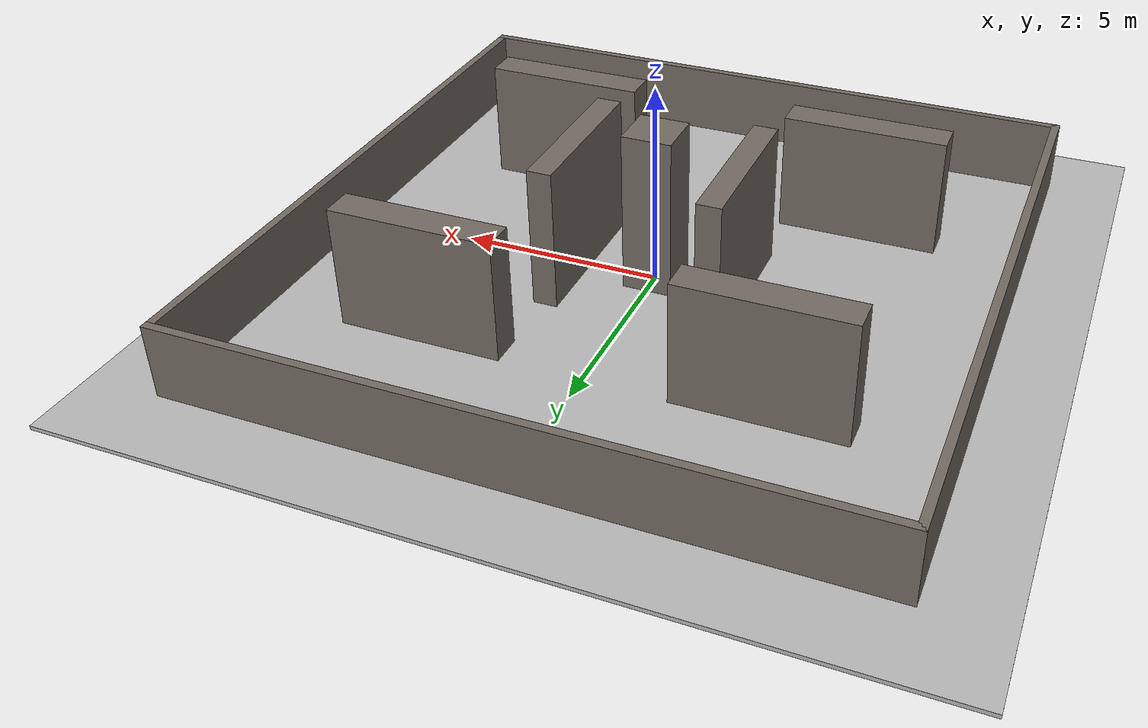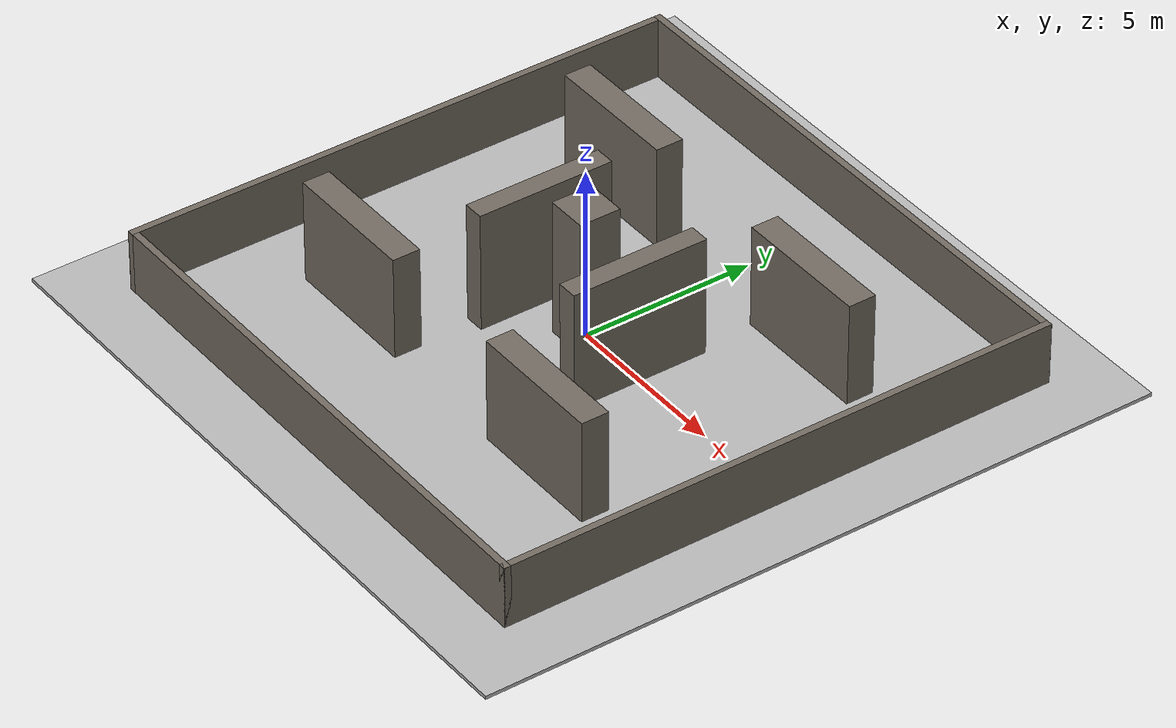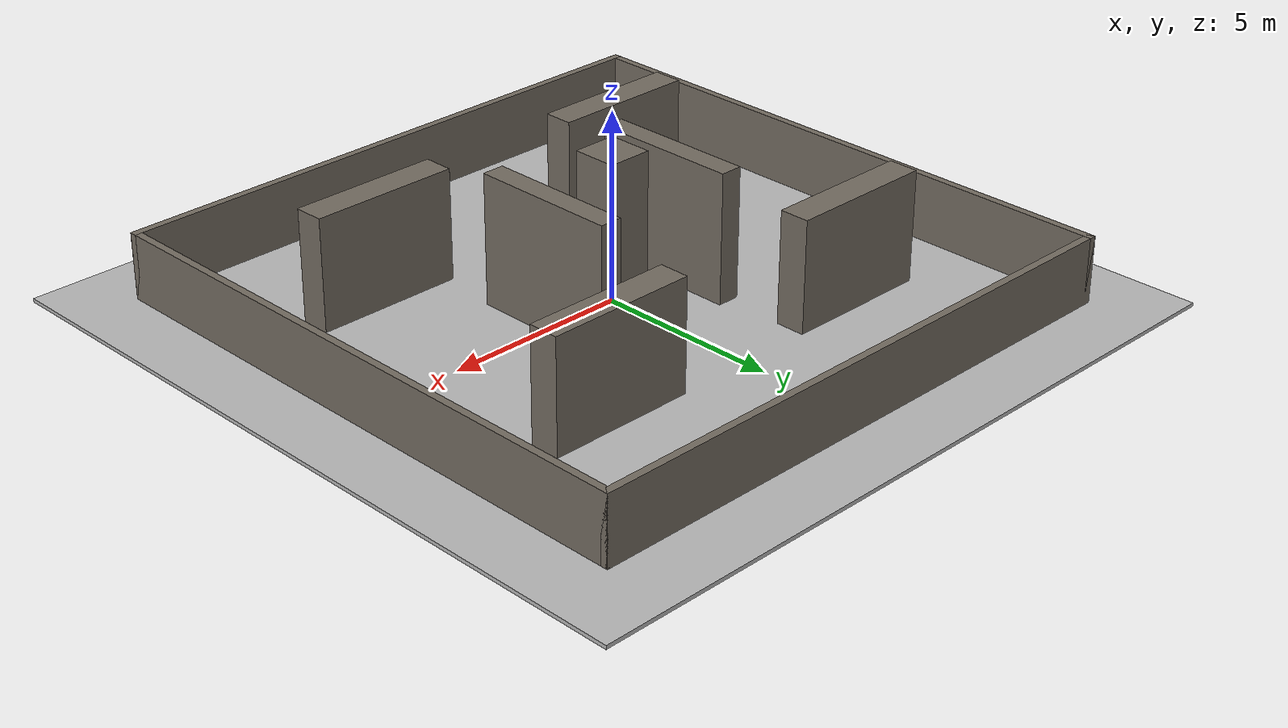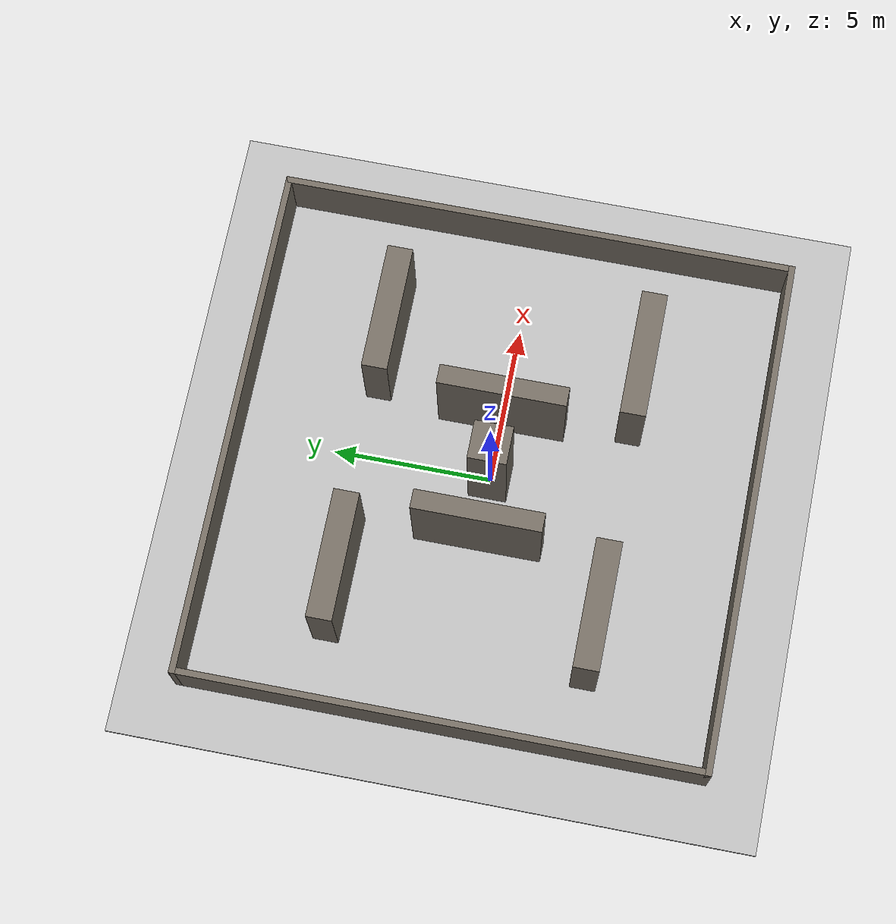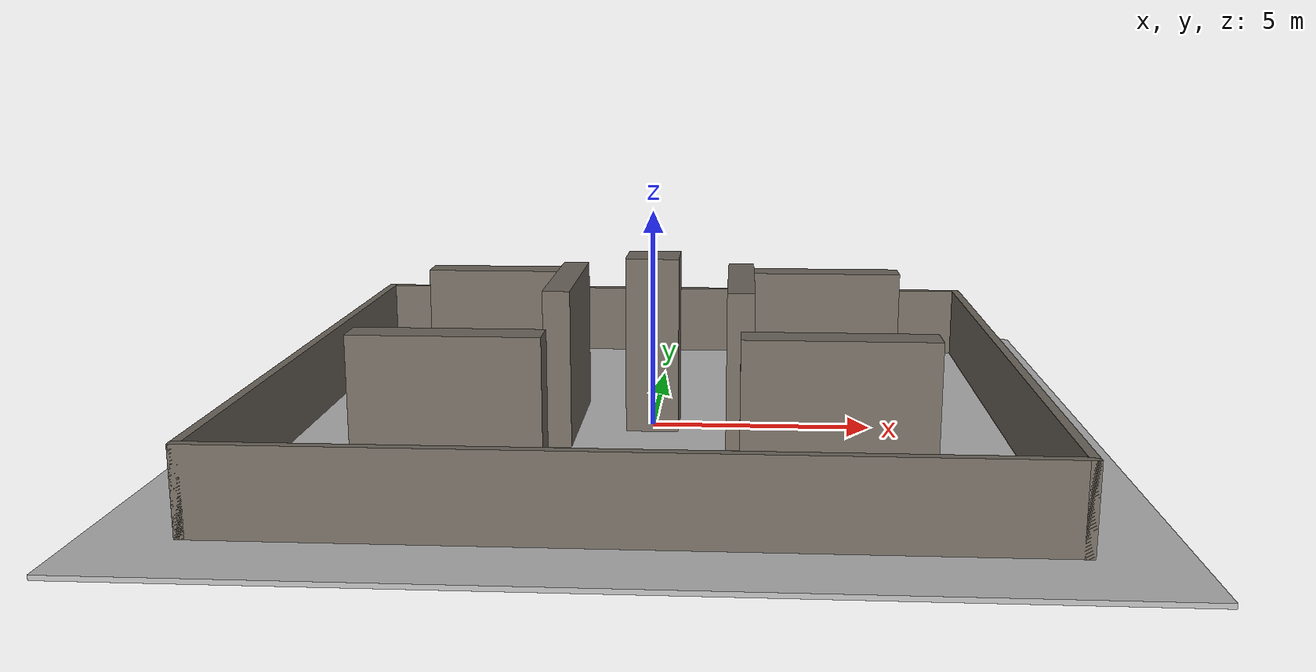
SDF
<?xml version="1.0" ?>
<sdf version="1.7">
  <world name="nav_sensor_degraded">
    <physics type="ode">
      <max_step_size>0.01</max_step_size>
    </physics>
    <light name="sun" type="directional">
      <cast_shadows>true</cast_shadows>
      <pose>0 0 10 0 0 0</pose>
      <diffuse>0.8 0.8 0.8 1</diffuse>
      <specular>0.3 0.3 0.3 1</specular>
      <attenuation>
        <range>1000</range>
        <constant>0.9</constant>
        <linear>0.01</linear>
        <quadratic>0.001</quadratic>
      </attenuation>
      <direction>-0.5 0.3 -1.0</direction>
    </light>

    <model name="ground_plane">
      <static>true</static>
      <pose>0 0 -0.05 0 0 0</pose>
      <link name="link">
        <collision name="collision">
          <geometry>
            <box><size>20.0 20.0 0.1</size></box>
          </geometry>
        </collision>
        <visual name="visual">
          <geometry>
            <box><size>20.0 20.0 0.1</size></box>
          </geometry>
        </visual>
      </link>
    </model>

    <model name="obstacle_00">
      <static>true</static>
      <pose>0.000 -8.100 0.900 0 0 0</pose>
      <link name="link">
        <collision name="collision">
          <geometry>
            <box><size>16.400 0.200 1.800</size></box>
          </geometry>
        </collision>
        <visual name="visual">
          <geometry>
            <box><size>16.400 0.200 1.800</size></box>
          </geometry>
          <material>
            <ambient>0.45 0.42 0.38 1</ambient>
            <diffuse>0.45 0.42 0.38 1</diffuse>
          </material>
        </visual>
      </link>
    </model>

    <model name="obstacle_01">
      <static>true</static>
      <pose>0.000 8.100 0.900 0 0 0</pose>
      <link name="link">
        <collision name="collision">
          <geometry>
            <box><size>16.400 0.200 1.800</size></box>
          </geometry>
        </collision>
        <visual name="visual">
          <geometry>
            <box><size>16.400 0.200 1.800</size></box>
          </geometry>
          <material>
            <ambient>0.45 0.42 0.38 1</ambient>
            <diffuse>0.45 0.42 0.38 1</diffuse>
          </material>
        </visual>
      </link>
    </model>

    <model name="obstacle_02">
      <static>true</static>
      <pose>-8.100 0.000 0.900 0 0 0</pose>
      <link name="link">
        <collision name="collision">
          <geometry>
            <box><size>0.200 16.400 1.800</size></box>
          </geometry>
        </collision>
        <visual name="visual">
          <geometry>
            <box><size>0.200 16.400 1.800</size></box>
          </geometry>
          <material>
            <ambient>0.45 0.42 0.38 1</ambient>
            <diffuse>0.45 0.42 0.38 1</diffuse>
          </material>
        </visual>
      </link>
    </model>

    <model name="obstacle_03">
      <static>true</static>
      <pose>8.100 0.000 0.900 0 0 0</pose>
      <link name="link">
        <collision name="collision">
          <geometry>
            <box><size>0.200 16.400 1.800</size></box>
          </geometry>
        </collision>
        <visual name="visual">
          <geometry>
            <box><size>0.200 16.400 1.800</size></box>
          </geometry>
          <material>
            <ambient>0.45 0.42 0.38 1</ambient>
            <diffuse>0.45 0.42 0.38 1</diffuse>
          </material>
        </visual>
      </link>
    </model>

    <model name="obstacle_04">
      <static>true</static>
      <pose>-4.000 -4.000 1.500 0 0 0</pose>
      <link name="link">
        <collision name="collision">
          <geometry>
            <box><size>4.000 0.800 3.000</size></box>
          </geometry>
        </collision>
        <visual name="visual">
          <geometry>
            <box><size>4.000 0.800 3.000</size></box>
          </geometry>
          <material>
            <ambient>0.45 0.42 0.38 1</ambient>
            <diffuse>0.45 0.42 0.38 1</diffuse>
          </material>
        </visual>
      </link>
    </model>

    <model name="obstacle_05">
      <static>true</static>
      <pose>4.000 -4.000 1.500 0 0 0</pose>
      <link name="link">
        <collision name="collision">
          <geometry>
            <box><size>4.000 0.800 3.000</size></box>
          </geometry>
        </collision>
        <visual name="visual">
          <geometry>
            <box><size>4.000 0.800 3.000</size></box>
          </geometry>
          <material>
            <ambient>0.45 0.42 0.38 1</ambient>
            <diffuse>0.45 0.42 0.38 1</diffuse>
          </material>
        </visual>
      </link>
    </model>

    <model name="obstacle_06">
      <static>true</static>
      <pose>-4.000 4.000 1.500 0 0 0</pose>
      <link name="link">
        <collision name="collision">
          <geometry>
            <box><size>4.000 0.800 3.000</size></box>
          </geometry>
        </collision>
        <visual name="visual">
          <geometry>
            <box><size>4.000 0.800 3.000</size></box>
          </geometry>
          <material>
            <ambient>0.45 0.42 0.38 1</ambient>
            <diffuse>0.45 0.42 0.38 1</diffuse>
          </material>
        </visual>
      </link>
    </model>

    <model name="obstacle_07">
      <static>true</static>
      <pose>4.000 4.000 1.500 0 0 0</pose>
      <link name="link">
        <collision name="collision">
          <geometry>
            <box><size>4.000 0.800 3.000</size></box>
          </geometry>
        </collision>
        <visual name="visual">
          <geometry>
            <box><size>4.000 0.800 3.000</size></box>
          </geometry>
          <material>
            <ambient>0.45 0.42 0.38 1</ambient>
            <diffuse>0.45 0.42 0.38 1</diffuse>
          </material>
        </visual>
      </link>
    </model>

    <model name="obstacle_08">
      <static>true</static>
      <pose>0.000 0.000 2.000 0 0 0</pose>
      <link name="link">
        <collision name="collision">
          <geometry>
            <box><size>1.200 1.200 4.000</size></box>
          </geometry>
        </collision>
        <visual name="visual">
          <geometry>
            <box><size>1.200 1.200 4.000</size></box>
          </geometry>
          <material>
            <ambient>0.45 0.42 0.38 1</ambient>
            <diffuse>0.45 0.42 0.38 1</diffuse>
          </material>
        </visual>
      </link>
    </model>

    <model name="obstacle_09">
      <static>true</static>
      <pose>-2.000 0.000 1.750 0 0 0</pose>
      <link name="link">
        <collision name="collision">
          <geometry>
            <box><size>0.600 4.000 3.500</size></box>
          </geometry>
        </collision>
        <visual name="visual">
          <geometry>
            <box><size>0.600 4.000 3.500</size></box>
          </geometry>
          <material>
            <ambient>0.45 0.42 0.38 1</ambient>
            <diffuse>0.45 0.42 0.38 1</diffuse>
          </material>
        </visual>
      </link>
    </model>

    <model name="obstacle_10">
      <static>true</static>
      <pose>2.000 0.000 1.750 0 0 0</pose>
      <link name="link">
        <collision name="collision">
          <geometry>
            <box><size>0.600 4.000 3.500</size></box>
          </geometry>
        </collision>
        <visual name="visual">
          <geometry>
            <box><size>0.600 4.000 3.500</size></box>
          </geometry>
          <material>
            <ambient>0.45 0.42 0.38 1</ambient>
            <diffuse>0.45 0.42 0.38 1</diffuse>
          </material>
        </visual>
      </link>
    </model>

  </world>
</sdf>
